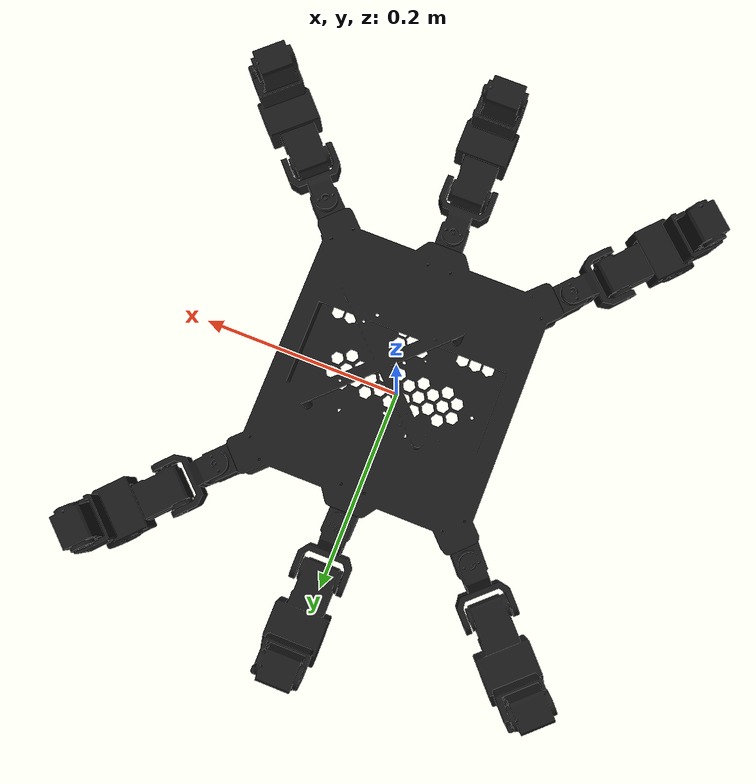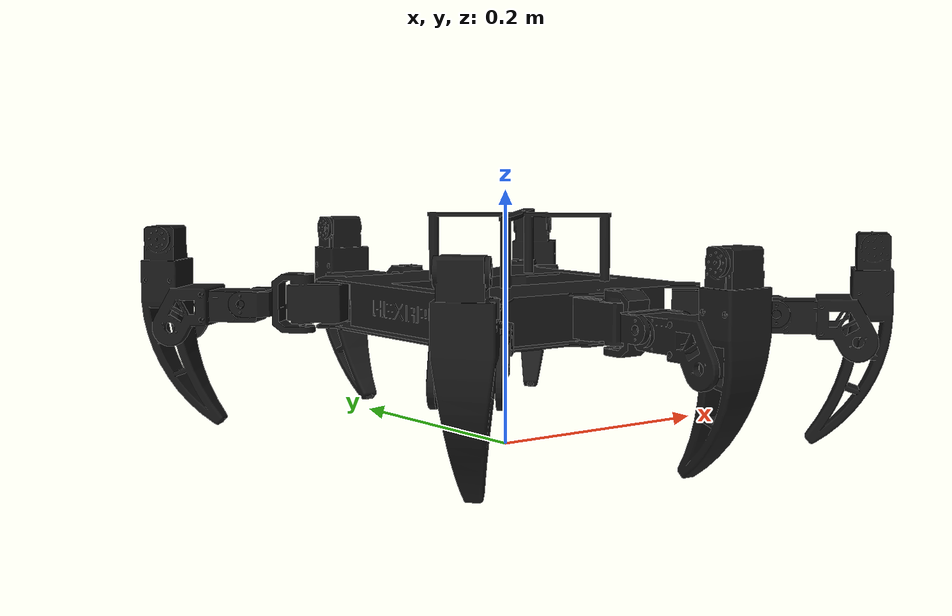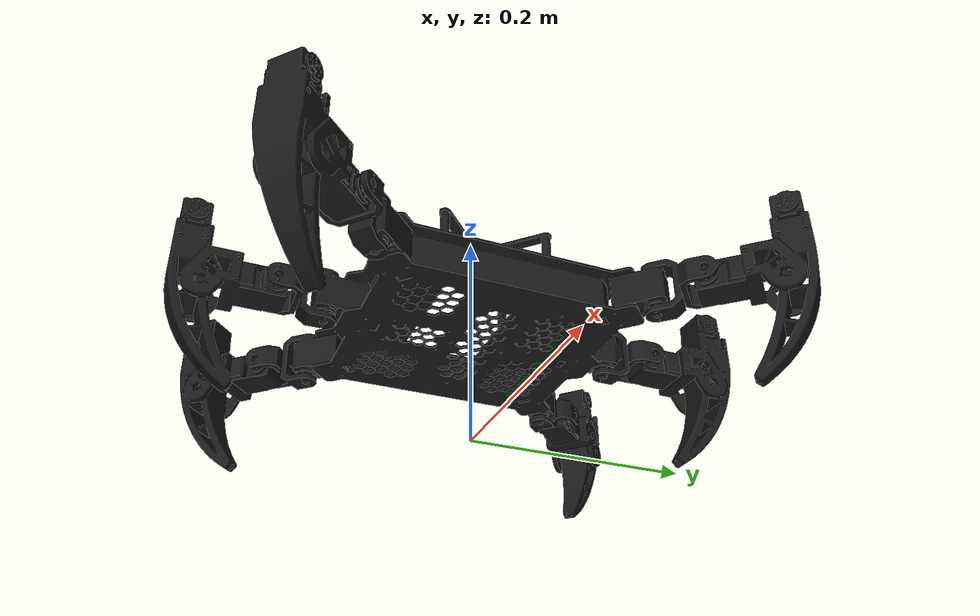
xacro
<?xml version="1.0"?>
<robot xmlns:xacro="http://ros.org/wiki/xacro" name="crab">

    <link name="base_link" />

    <xacro:property name="body_standing_height" value="0.110" />

    <joint name="base_joint" type="fixed">
        <parent link="base_link" />
        <child link="thorax" />
        <origin xyz="0 0 ${body_standing_height}" rpy="0 0 0" />
    </joint>

    <!-- STLs exported in metres from SolidWorks — no scale factor needed -->
    <link name="thorax">
        <visual>
            <origin xyz="0 0 0" rpy="0 0 0" />
            <geometry>
                <mesh filename="package://hexapod_description/meshes/body_link.STL"
                      scale="0.001 0.001 0.001" />
            </geometry>
            <material name="black">
                <color rgba="0.1 0.1 0.1 1" />
            </material>
        </visual>
    </link>

    <xacro:property name="joint_lower_limit" value="-1.57" />
    <xacro:property name="joint_upper_limit" value="1.57" />
    <xacro:property name="joint_effort"      value="10.0" />
    <xacro:property name="joint_velocity"    value="1.0" />

    <xacro:macro name="leg" params="side num x y angle mirror_sign">

        <!-- True reflection via negative Y scale for left-side meshes. -->
        <xacro:property name="mesh_scale_y" value="${0.001 * mirror_sign}" />

        <!-- 180° X rotation on left femur & tibia only (not coxa).
             flip_x = 0  for right legs, π for left legs. -->
        <xacro:property name="flip_x" value="${(1 - mirror_sign) * pi / 2}" />

        <!-- ═══ TUNABLE OFFSETS — edit these and run ./tune.sh ═══ -->
        <xacro:property name="femur_dx" value="-0.0165" />
        <xacro:property name="femur_dy" value="-0.005" />
        <xacro:property name="femur_dz" value="0.0" />

        <xacro:property name="tibia_dx" value="-0.05" />
        <xacro:property name="tibia_dy" value="0.125" />
        <xacro:property name="tibia_dz" value="0.0" />

        <!-- Fixed frame anchored on thorax at the leg's attachment point -->
        <joint name="leg_center_joint_${side}${num}" type="fixed">
            <origin xyz="${x} ${y} 0" rpy="0 0 0" />
            <parent link="thorax" />
            <child link="leg_center_${side}${num}" />
        </joint>
        <link name="leg_center_${side}${num}" />

        <!-- COXA — yaw (Z rotation) -->
        <joint name="coxa_joint_${side}${num}" type="revolute">
            <origin xyz="0 0 0" rpy="0 0 ${angle}" />
            <parent link="leg_center_${side}${num}" />
            <child link="coxa_${side}${num}" />
            <axis xyz="0 0 1" />
            <limit lower="${joint_lower_limit}" upper="${joint_upper_limit}"
                   effort="${joint_effort}" velocity="${joint_velocity}" />
        </joint>
        <link name="coxa_${side}${num}">
            <visual>
                <origin xyz="0 0 0" rpy="0 0 0" />
                <geometry>
                    <mesh filename="package://hexapod_description/meshes/coxa_link.STL"
                          scale="0.001 ${mesh_scale_y} 0.001" />
                </geometry>
                <material name="black"><color rgba="0.1 0.1 0.1 1" /></material>
            </visual>
        </link>

        <!-- FEMUR — pitch. rpy="-pi/2 0 0" rotates child frame so its Z
             (rotation axis) becomes the pitch axis in the coxa frame. -->
        <joint name="femur_joint_${side}${num}" type="revolute">
            <origin xyz="0.06000 0 0" rpy="${pi/2} 0 0" />
            <parent link="coxa_${side}${num}" />
            <child link="femur_${side}${num}" />
            <axis xyz="0 0 1" />
            <limit lower="${joint_lower_limit}" upper="${joint_upper_limit}"
                   effort="${joint_effort}" velocity="${joint_velocity}" />
        </joint>
        <link name="femur_${side}${num}">
            <visual>
                <origin xyz="${femur_dx} ${femur_dy} ${femur_dz}" rpy="${flip_x} 0 0" />
                <geometry>
                    <mesh filename="package://hexapod_description/meshes/femur_link.STL"
                          scale="0.001 ${mesh_scale_y} 0.001" />
                </geometry>
                <material name="black"><color rgba="0.1 0.1 0.1 1" /></material>
            </visual>
        </link>

        <!-- TIBIA — pitch -->
        <joint name="tibia_joint_${side}${num}" type="revolute">
            <origin xyz="0.17962 0 0" rpy="${pi} 0 -${pi/2}" />
            <parent link="femur_${side}${num}" />
            <child link="tibia_${side}${num}" />
            <axis xyz="0 0 1" />
            <limit lower="${joint_lower_limit}" upper="${joint_upper_limit}"
                   effort="${joint_effort}" velocity="${joint_velocity}" />
        </joint>
        <link name="tibia_${side}${num}">
            <visual>
                <origin xyz="${tibia_dx} ${tibia_dy} ${tibia_dz}" rpy="${flip_x} 0 0" />
                <geometry>
                    <mesh filename="package://hexapod_description/meshes/tibia_link.STL"
                          scale="0.001 ${mesh_scale_y} 0.001" />
                </geometry>
                <material name="black"><color rgba="0.1 0.1 0.1 1" /></material>
            </visual>
        </link>

        <!-- Virtual foot-tip (used by IK / contact detection) -->
        <joint name="tibia_foot_joint_${side}${num}" type="fixed">
            <origin xyz="0.14116 0 0" rpy="0 0 0" />
            <parent link="tibia_${side}${num}" />
            <child link="tibia_foot_${side}${num}" />
        </joint>
        <link name="tibia_foot_${side}${num}" />

    </xacro:macro>

    <!-- Angles = atan2(y_attach, x_attach) so coxa +X points outward     -->
    <!-- Right legs — r1 front, r2 middle, r3 back (no mesh flip)         -->
    <xacro:leg side="r" num="1" x="0.11227"  y="-0.12133" angle="${atan2(-0.12133,  0.11227)}" mirror_sign="1" />
    <xacro:leg side="r" num="2" x="0.0"      y="-0.13240" angle="-${pi/2}"                     mirror_sign="1" />
    <xacro:leg side="r" num="3" x="-0.11227" y="-0.12133" angle="${atan2(-0.12133, -0.11227)}" mirror_sign="1" />

    <!-- Left legs — NEW convention: l3 front, l2 middle, l1 back          -->
    <!-- (l1 and l3 swapped vs. legacy URDF — matches the new controller's -->
    <!--  _SUFFIX map and the Hiwonder servo bridge's servo-ID layout.)    -->
    <xacro:leg side="l" num="3" x="0.11227"  y="0.12133"  angle="${atan2( 0.12133,  0.11227)}" mirror_sign="-1" />
    <xacro:leg side="l" num="2" x="0.0"      y="0.13240"  angle="${pi/2}"                      mirror_sign="-1" />
    <xacro:leg side="l" num="1" x="-0.11227" y="0.12133"  angle="${atan2( 0.12133, -0.11227)}" mirror_sign="-1" />

</robot>
